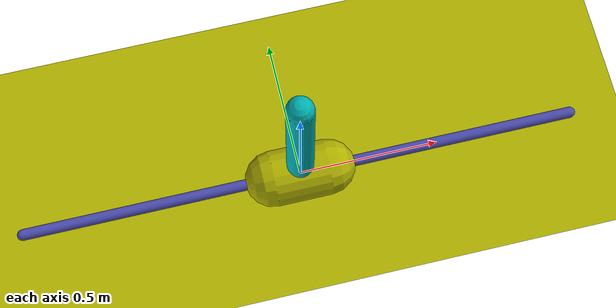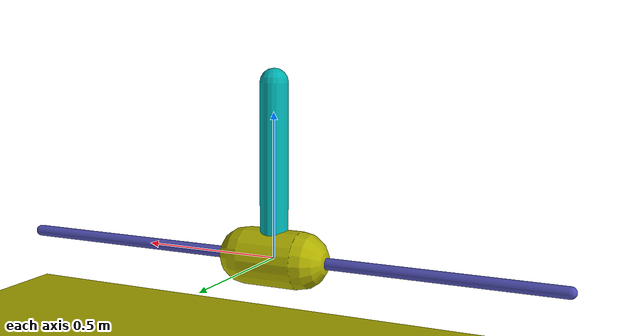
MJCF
<mujoco model="inverted pendulum">
	<compiler inertiafromgeom="true"/>
	<default>
		<joint armature="0" damping="1" limited="true"/>
		<geom contype="0" friction="1 0.1 0.1" rgba="0.7 0.7 0 1"/>
		<tendon/>
		<motor ctrlrange="-3 3"/>
	</default>
	<option gravity="0 0 -9.81" integrator="RK4" timestep="0.02"/>
	<size nstack="3000"/>

	<visual>
        <map force="0.1" zfar="30"/>
        <rgba haze="0.15 0.25 0.35 1"/>
        <quality shadowsize="2048"/>
        <global offwidth="800" offheight="800"/>
    </visual>

	<asset>
        <texture type="skybox" builtin="gradient" rgb1="0.3 0.5 0.7" rgb2="0 0 0" width="512" height="512"/>
        <texture name="texplane" type="2d" builtin="checker" rgb1=".2 .3 .4" rgb2=".1 0.15 0.2" width="512" height="512" mark="cross" markrgb=".8 .8 .8"/>
        <texture name="texgeom" type="cube" builtin="flat" mark="cross" width="127" height="1278" rgb1="0.8 0.6 0.4" rgb2="0.8 0.6 0.4" markrgb="1 1 1" random="0.01"/>
        <material name="matplane" reflectance="0.3" texture="texplane" texrepeat="1 1" texuniform="true"/>
        <material name="matgeom" texture="texgeom" texuniform="true" rgba="0.8 0.6 .4 1"/>
    </asset>

	<worldbody>
		<geom name="floor" pos="0 0 -0.285" size="0 0 .25" type="plane" material="matplane" condim="3" contype="1" conaffinity="1"/>
        <light directional="false" diffuse=".2 .2 .2" specular="0 0 0" pos="0 0 5" dir="0 0 -1" castshadow="false"/>
        <light mode="targetbodycom" target="cart" directional="false" diffuse=".8 .8 .8" specular="0.3 0.3 0.3" pos="0 0 4.0" dir="0 0 -1"/>
		<!--geom name="ground" type="plane" pos="0 0 0" /-->
		<geom name="rail" pos="0 0 0" quat="0.707 0 0.707 0" rgba="0.3 0.3 0.7 1" size="0.02 1" type="capsule"/>
		<body name="cart" pos="0 0 0">
			<joint axis="1 0 0" limited="true" name="slider" pos="0 0 0" range="-1 1" type="slide"/>
			<geom name="cart" pos="0 0 0" quat="0.707 0 0.707 0" size="0.1 0.1" type="capsule"/>
			<body name="pole" pos="0 0 0">
				<joint axis="0 1 0" name="hinge" pos="0 0 0" range="-90 90" type="hinge"/>
				<geom fromto="0 0 0 0 0 0.6" name="cpole" rgba="0 0.7 0.7 1" size="0.049 0.3" type="capsule"/>
			</body>
		</body>
	</worldbody>
	<actuator>
		<motor ctrllimited="true" ctrlrange="-3 3" gear="100" joint="slider" name="slide"/>
	</actuator>

	<sensor>
		<jointpos joint="slider" name="slider"/>
		<jointpos joint="hinge" name="hinge"/>
	</sensor>
</mujoco>
